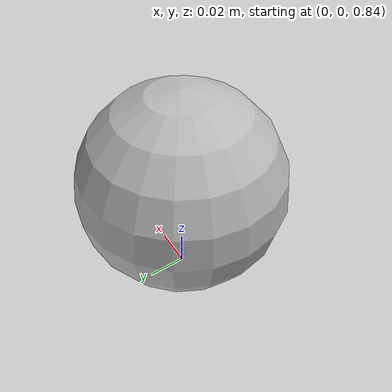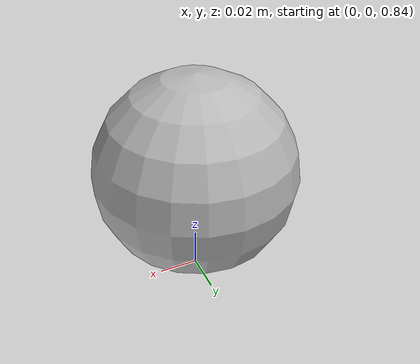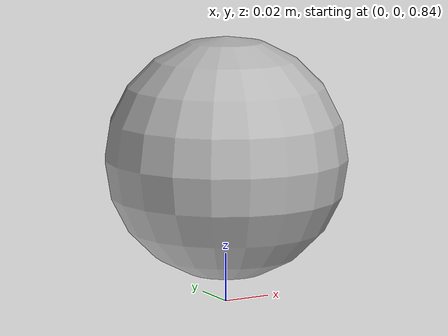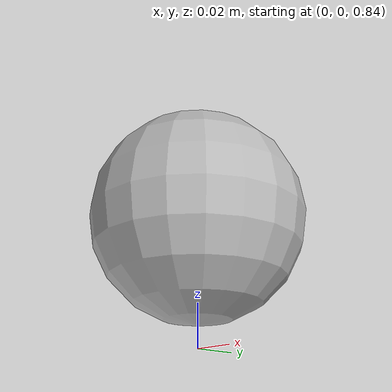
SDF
<?xml version='1.0'?>
<sdf version='1.6'>
		<model name="BodySonarSensorRefIndex">
			<self_collide>true</self_collide>
			<pose>0.0 0.0 0.0 0.0 0.0 0.0</pose>
			<!-- Start of parts of the pmodel BodySonarSensorRefIndex -->
			<!-- End of parts of the pmodel BodySonarSensorRefIndex -->

			<!-- Start of links of the pmodel BodySonarSensorRefIndex -->
			<!-- link full name is BodySonarSensorRefIndex::Tip -->
			<link name="1-Tip">
					<pose>0.0 0.0 0.0 0.0 0.0 0.0</pose>
					<inertial>
						<pose>0.0 0.0 0.0 0.0 0.0 0.0</pose>
						<inertia>
							<ixx>1.0</ixx>
							<ixy>0.0</ixy>
							<ixz>0.0</ixz>
							<iyy>1.0</iyy>
							<iyz>0.0</iyz>
							<izz>1.0</izz>
						</inertia>
						<mass>1.0</mass>
					</inertial>
					<!-- body full name is BodySonarSensorRefIndex::Tip::my_body -->
					<collision name="1--my_body">
						<laser_retro>0.0</laser_retro>
						<pose>0.0 0.0 0.8999999761581421 0.0 0.0 0.0</pose>
						<geometry>
							<sphere>
								<radius>0.05000000074505806</radius>
							</sphere>
						</geometry>
						<surface>
							<bounce>
								<restitution_coefficient>0.0</restitution_coefficient>
								<threshold>100000.0</threshold>
							</bounce>
							<friction>
								<ode>
									<mu>1.0</mu>
									<mu2>1.0</mu2>
									<fdir1>0.0 0.0 0.0</fdir1>
									<slip1>0.0</slip1>
									<slip2>0.0</slip2>
								</ode>
								<torsional>
									<coefficient>1.0</coefficient>
									<surface_radius>0.0</surface_radius>
								</torsional>
							</friction>
						</surface>
					</collision>
					<visual name="1--my_body">
						<laser_retro>0.0</laser_retro>
						<pose>0.0 0.0 0.8999999761581421 0.0 0.0 0.0</pose>
						<geometry>
							<sphere>
								<radius>0.05000000074505806</radius>
							</sphere>
						</geometry>
						<surface>
							<bounce>
								<restitution_coefficient>0.0</restitution_coefficient>
								<threshold>100000.0</threshold>
							</bounce>
							<friction>
								<ode>
									<mu>1.0</mu>
									<mu2>1.0</mu2>
									<fdir1>0.0 0.0 0.0</fdir1>
									<slip1>0.0</slip1>
									<slip2>0.0</slip2>
								</ode>
								<torsional>
									<coefficient>1.0</coefficient>
									<surface_radius>0.0</surface_radius>
								</torsional>
							</friction>
						</surface>
					</visual>
					<!-- WARNING: The SDF generator relies on annotations of the sensor my_sonar_sensor::0 to specify aspects of the
					sensor that are accounted for in the equations. -->
					<!-- sensor simple name is my_sonar_sensor -->
					<sensor name="my_sonar_sensor::0" type="sonar">
						<pose>0.0 0.0 0.0024999999441206455 3.141592653589793 4.63287071418409E-5 3.141592653589793</pose>
						<visualize>true</visualize>
						<always_on>true</always_on>
						<update_rate>1.0</update_rate>
						<sonar>
							<min>1.0</min>
							<max>2.0</max>
							<radius>1.5</radius>
						</sonar>
					</sensor>
					<!-- WARNING: The SDF generator relies on annotations of the sensor my_sonar_sensor::1 to specify aspects of the
					sensor that are accounted for in the equations. -->
					<!-- sensor simple name is my_sonar_sensor -->
					<sensor name="my_sonar_sensor::1" type="sonar">
						<pose>0.0 0.0 0.0024999999441206455 3.141592653589793 4.63287071418409E-5 3.1414073387808124</pose>
						<visualize>true</visualize>
						<always_on>true</always_on>
						<update_rate>1.0</update_rate>
						<sonar>
							<min>1.0</min>
							<max>2.0</max>
							<radius>1.5</radius>
						</sonar>
					</sensor>
					<!-- WARNING: The SDF generator relies on annotations of the sensor my_sonar_sensor::2 to specify aspects of the
					sensor that are accounted for in the equations. -->
					<!-- sensor simple name is my_sonar_sensor -->
					<sensor name="my_sonar_sensor::2" type="sonar">
						<pose>0.0 0.0 0.0024999999441206455 3.141592653589793 4.63287071418409E-5 3.141222023971831</pose>
						<visualize>true</visualize>
						<always_on>true</always_on>
						<update_rate>1.0</update_rate>
						<sonar>
							<min>1.0</min>
							<max>2.0</max>
							<radius>1.5</radius>
						</sonar>
					</sensor>
					<!-- WARNING: The SDF generator relies on annotations of the sensor my_sonar_sensor::3 to specify aspects of the
					sensor that are accounted for in the equations. -->
					<!-- sensor simple name is my_sonar_sensor -->
					<sensor name="my_sonar_sensor::3" type="sonar">
						<pose>0.0 0.0 0.0024999999441206455 3.141592653589793 4.63287071418409E-5 3.1410367091628504</pose>
						<visualize>true</visualize>
						<always_on>true</always_on>
						<update_rate>1.0</update_rate>
						<sonar>
							<min>1.0</min>
							<max>2.0</max>
							<radius>1.5</radius>
						</sonar>
					</sensor>
					<!-- WARNING: The SDF generator relies on annotations of the sensor my_sonar_sensor::4 to specify aspects of the
					sensor that are accounted for in the equations. -->
					<!-- sensor simple name is my_sonar_sensor -->
					<sensor name="my_sonar_sensor::4" type="sonar">
						<pose>0.0 0.0 0.0024999999441206455 3.141592653589793 4.63287071418409E-5 3.140851394353869</pose>
						<visualize>true</visualize>
						<always_on>true</always_on>
						<update_rate>1.0</update_rate>
						<sonar>
							<min>1.0</min>
							<max>2.0</max>
							<radius>1.5</radius>
						</sonar>
					</sensor>
					<!-- WARNING: The SDF generator relies on annotations of the sensor my_sonar_sensor::5 to specify aspects of the
					sensor that are accounted for in the equations. -->
					<!-- sensor simple name is my_sonar_sensor -->
					<sensor name="my_sonar_sensor::5" type="sonar">
						<pose>0.0 0.0 0.0024999999441206455 3.141592653589793 4.63287071418409E-5 3.1406660795448884</pose>
						<visualize>true</visualize>
						<always_on>true</always_on>
						<update_rate>1.0</update_rate>
						<sonar>
							<min>1.0</min>
							<max>2.0</max>
							<radius>1.5</radius>
						</sonar>
					</sensor>
					<!-- WARNING: The SDF generator relies on annotations of the sensor my_sonar_sensor::6 to specify aspects of the
					sensor that are accounted for in the equations. -->
					<!-- sensor simple name is my_sonar_sensor -->
					<sensor name="my_sonar_sensor::6" type="sonar">
						<pose>0.0 0.0 0.0024999999441206455 3.141592653589793 4.63287071418409E-5 3.140480764735907</pose>
						<visualize>true</visualize>
						<always_on>true</always_on>
						<update_rate>1.0</update_rate>
						<sonar>
							<min>1.0</min>
							<max>2.0</max>
							<radius>1.5</radius>
						</sonar>
					</sensor>
					<!-- WARNING: The SDF generator relies on annotations of the sensor my_sonar_sensor::7 to specify aspects of the
					sensor that are accounted for in the equations. -->
					<!-- sensor simple name is my_sonar_sensor -->
					<sensor name="my_sonar_sensor::7" type="sonar">
						<pose>0.0 0.0 0.0024999999441206455 3.141592653589793 4.63287071418409E-5 3.140295449926926</pose>
						<visualize>true</visualize>
						<always_on>true</always_on>
						<update_rate>1.0</update_rate>
						<sonar>
							<min>1.0</min>
							<max>2.0</max>
							<radius>1.5</radius>
						</sonar>
					</sensor>
					<!-- WARNING: The SDF generator relies on annotations of the sensor my_sonar_sensor::8 to specify aspects of the
					sensor that are accounted for in the equations. -->
					<!-- sensor simple name is my_sonar_sensor -->
					<sensor name="my_sonar_sensor::8" type="sonar">
						<pose>0.0 0.0 0.0024999999441206455 3.141592653589793 4.63287071418409E-5 3.1401101351179452</pose>
						<visualize>true</visualize>
						<always_on>true</always_on>
						<update_rate>1.0</update_rate>
						<sonar>
							<min>1.0</min>
							<max>2.0</max>
							<radius>1.5</radius>
						</sonar>
					</sensor>
					<!-- WARNING: The SDF generator relies on annotations of the sensor my_sonar_sensor::9 to specify aspects of the
					sensor that are accounted for in the equations. -->
					<!-- sensor simple name is my_sonar_sensor -->
					<sensor name="my_sonar_sensor::9" type="sonar">
						<pose>0.0 0.0 0.0024999999441206455 3.141592653589793 4.63287071418409E-5 3.139924820308964</pose>
						<visualize>true</visualize>
						<always_on>true</always_on>
						<update_rate>1.0</update_rate>
						<sonar>
							<min>1.0</min>
							<max>2.0</max>
							<radius>1.5</radius>
						</sonar>
					</sensor>
					<!-- WARNING: The SDF generator relies on annotations of the sensor my_sonar_sensor::10 to specify aspects of the
					sensor that are accounted for in the equations. -->
					<!-- sensor simple name is my_sonar_sensor -->
					<sensor name="my_sonar_sensor::10" type="sonar">
						<pose>0.0 0.0 0.0024999999441206455 3.141592653589793 4.63287071418409E-5 3.1397395054999833</pose>
						<visualize>true</visualize>
						<always_on>true</always_on>
						<update_rate>1.0</update_rate>
						<sonar>
							<min>1.0</min>
							<max>2.0</max>
							<radius>1.5</radius>
						</sonar>
					</sensor>
					<!-- WARNING: The SDF generator relies on annotations of the sensor my_sonar_sensor::11 to specify aspects of the
					sensor that are accounted for in the equations. -->
					<!-- sensor simple name is my_sonar_sensor -->
					<sensor name="my_sonar_sensor::11" type="sonar">
						<pose>0.0 0.0 0.0024999999441206455 3.141592653589793 4.63287071418409E-5 3.139554190691002</pose>
						<visualize>true</visualize>
						<always_on>true</always_on>
						<update_rate>1.0</update_rate>
						<sonar>
							<min>1.0</min>
							<max>2.0</max>
							<radius>1.5</radius>
						</sonar>
					</sensor>
					<!-- WARNING: The SDF generator relies on annotations of the sensor my_sonar_sensor::12 to specify aspects of the
					sensor that are accounted for in the equations. -->
					<!-- sensor simple name is my_sonar_sensor -->
					<sensor name="my_sonar_sensor::12" type="sonar">
						<pose>0.0 0.0 0.0024999999441206455 3.141592653589793 4.63287071418409E-5 3.1393688758820213</pose>
						<visualize>true</visualize>
						<always_on>true</always_on>
						<update_rate>1.0</update_rate>
						<sonar>
							<min>1.0</min>
							<max>2.0</max>
							<radius>1.5</radius>
						</sonar>
					</sensor>
					<!-- WARNING: The SDF generator relies on annotations of the sensor my_sonar_sensor::13 to specify aspects of the
					sensor that are accounted for in the equations. -->
					<!-- sensor simple name is my_sonar_sensor -->
					<sensor name="my_sonar_sensor::13" type="sonar">
						<pose>0.0 0.0 0.0024999999441206455 3.141592653589793 4.63287071418409E-5 3.13918356107304</pose>
						<visualize>true</visualize>
						<always_on>true</always_on>
						<update_rate>1.0</update_rate>
						<sonar>
							<min>1.0</min>
							<max>2.0</max>
							<radius>1.5</radius>
						</sonar>
					</sensor>
					<!-- WARNING: The SDF generator relies on annotations of the sensor my_sonar_sensor::14 to specify aspects of the
					sensor that are accounted for in the equations. -->
					<!-- sensor simple name is my_sonar_sensor -->
					<sensor name="my_sonar_sensor::14" type="sonar">
						<pose>0.0 0.0 0.0024999999441206455 3.141592653589793 4.63287071418409E-5 3.1389982462640593</pose>
						<visualize>true</visualize>
						<always_on>true</always_on>
						<update_rate>1.0</update_rate>
						<sonar>
							<min>1.0</min>
							<max>2.0</max>
							<radius>1.5</radius>
						</sonar>
					</sensor>
					<!-- WARNING: The SDF generator relies on annotations of the sensor my_sonar_sensor::15 to specify aspects of the
					sensor that are accounted for in the equations. -->
					<!-- sensor simple name is my_sonar_sensor -->
					<sensor name="my_sonar_sensor::15" type="sonar">
						<pose>0.0 0.0 0.0024999999441206455 3.141592653589793 4.63287071418409E-5 3.138812931455078</pose>
						<visualize>true</visualize>
						<always_on>true</always_on>
						<update_rate>1.0</update_rate>
						<sonar>
							<min>1.0</min>
							<max>2.0</max>
							<radius>1.5</radius>
						</sonar>
					</sensor>
					<!-- WARNING: The SDF generator relies on annotations of the sensor my_sonar_sensor::16 to specify aspects of the
					sensor that are accounted for in the equations. -->
					<!-- sensor simple name is my_sonar_sensor -->
					<sensor name="my_sonar_sensor::16" type="sonar">
						<pose>0.0 0.0 0.0024999999441206455 3.141592653589793 4.63287071418409E-5 3.138627616646097</pose>
						<visualize>true</visualize>
						<always_on>true</always_on>
						<update_rate>1.0</update_rate>
						<sonar>
							<min>1.0</min>
							<max>2.0</max>
							<radius>1.5</radius>
						</sonar>
					</sensor>
					<!-- WARNING: The SDF generator relies on annotations of the sensor my_sonar_sensor::17 to specify aspects of the
					sensor that are accounted for in the equations. -->
					<!-- sensor simple name is my_sonar_sensor -->
					<sensor name="my_sonar_sensor::17" type="sonar">
						<pose>0.0 0.0 0.0024999999441206455 3.141592653589793 4.63287071418409E-5 3.138442301837116</pose>
						<visualize>true</visualize>
						<always_on>true</always_on>
						<update_rate>1.0</update_rate>
						<sonar>
							<min>1.0</min>
							<max>2.0</max>
							<radius>1.5</radius>
						</sonar>
					</sensor>
					<!-- WARNING: The SDF generator relies on annotations of the sensor my_sonar_sensor::18 to specify aspects of the
					sensor that are accounted for in the equations. -->
					<!-- sensor simple name is my_sonar_sensor -->
					<sensor name="my_sonar_sensor::18" type="sonar">
						<pose>0.0 0.0 0.0024999999441206455 3.141592653589793 4.63287071418409E-5 3.138256987028135</pose>
						<visualize>true</visualize>
						<always_on>true</always_on>
						<update_rate>1.0</update_rate>
						<sonar>
							<min>1.0</min>
							<max>2.0</max>
							<radius>1.5</radius>
						</sonar>
					</sensor>
					<!-- WARNING: The SDF generator relies on annotations of the sensor my_sonar_sensor::19 to specify aspects of the
					sensor that are accounted for in the equations. -->
					<!-- sensor simple name is my_sonar_sensor -->
					<sensor name="my_sonar_sensor::19" type="sonar">
						<pose>0.0 0.0 0.0024999999441206455 3.141592653589793 4.63287071418409E-5 3.138071672219154</pose>
						<visualize>true</visualize>
						<always_on>true</always_on>
						<update_rate>1.0</update_rate>
						<sonar>
							<min>1.0</min>
							<max>2.0</max>
							<radius>1.5</radius>
						</sonar>
					</sensor>
					<!-- WARNING: The SDF generator relies on annotations of the sensor my_sonar_sensor::20 to specify aspects of the
					sensor that are accounted for in the equations. -->
					<!-- sensor simple name is my_sonar_sensor -->
					<sensor name="my_sonar_sensor::20" type="sonar">
						<pose>0.0 0.0 0.0024999999441206455 3.141592653589793 4.63287071418409E-5 3.137886357410173</pose>
						<visualize>true</visualize>
						<always_on>true</always_on>
						<update_rate>1.0</update_rate>
						<sonar>
							<min>1.0</min>
							<max>2.0</max>
							<radius>1.5</radius>
						</sonar>
					</sensor>
					<!-- WARNING: The SDF generator relies on annotations of the sensor my_sonar_sensor::21 to specify aspects of the
					sensor that are accounted for in the equations. -->
					<!-- sensor simple name is my_sonar_sensor -->
					<sensor name="my_sonar_sensor::21" type="sonar">
						<pose>0.0 0.0 0.0024999999441206455 3.141592653589793 4.63287071418409E-5 3.137701042601192</pose>
						<visualize>true</visualize>
						<always_on>true</always_on>
						<update_rate>1.0</update_rate>
						<sonar>
							<min>1.0</min>
							<max>2.0</max>
							<radius>1.5</radius>
						</sonar>
					</sensor>
					<!-- WARNING: The SDF generator relies on annotations of the sensor my_sonar_sensor::22 to specify aspects of the
					sensor that are accounted for in the equations. -->
					<!-- sensor simple name is my_sonar_sensor -->
					<sensor name="my_sonar_sensor::22" type="sonar">
						<pose>0.0 0.0 0.0024999999441206455 3.141592653589793 4.63287071418409E-5 3.137515727792211</pose>
						<visualize>true</visualize>
						<always_on>true</always_on>
						<update_rate>1.0</update_rate>
						<sonar>
							<min>1.0</min>
							<max>2.0</max>
							<radius>1.5</radius>
						</sonar>
					</sensor>
					<!-- WARNING: The SDF generator relies on annotations of the sensor my_sonar_sensor::23 to specify aspects of the
					sensor that are accounted for in the equations. -->
					<!-- sensor simple name is my_sonar_sensor -->
					<sensor name="my_sonar_sensor::23" type="sonar">
						<pose>0.0 0.0 0.0024999999441206455 3.141592653589793 4.63287071418409E-5 3.1373304129832302</pose>
						<visualize>true</visualize>
						<always_on>true</always_on>
						<update_rate>1.0</update_rate>
						<sonar>
							<min>1.0</min>
							<max>2.0</max>
							<radius>1.5</radius>
						</sonar>
					</sensor>
			</link>
			<!-- End of links of the pmodel BodySonarSensorRefIndex -->

			<!-- Start of joints of the pmodel BodySonarSensorRefIndex -->
			<!-- End of joints of the pmodel BodySonarSensorRefIndex -->

			<!-- Start of fixed connections of the pmodel BodySonarSensorRefIndex -->
			<!-- End of fixed connections of the pmodel BodySonarSensorRefIndex -->
		</model>
</sdf>
